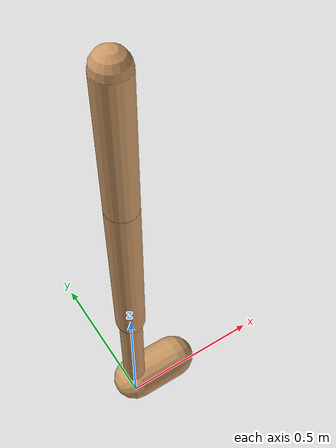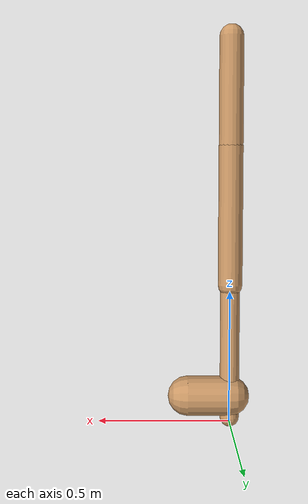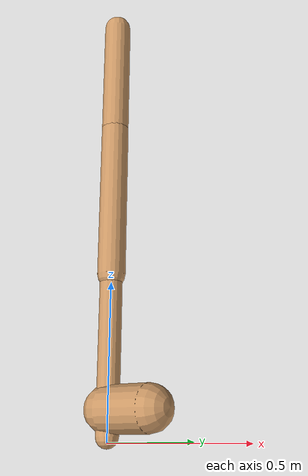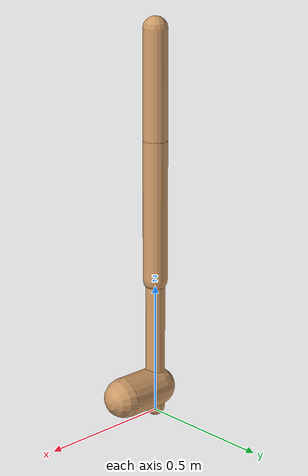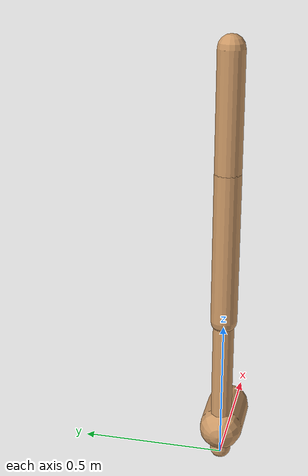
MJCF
<mujoco model="walker2d">
  <compiler angle="degree" coordinate="global" inertiafromgeom="true" />
  <default>
    <joint armature="0.01" damping=".1" limited="true" />
    <geom conaffinity="0" condim="3" contype="1" density="1000" friction="0.8 .1 .1" rgba="0.8 0.6 .4 1" />
  </default>
  <option integrator="RK4" timestep="0.002" />
  <worldbody>

    <body name="torso" pos="0 0 0.1547327047629603">
      <joint armature="0" axis="1 0 0" damping="0" limited="false" name="ignorex" pos="0 0 0" stiffness="0" type="slide" />
      <joint armature="0" axis="0 0 1" damping="0" limited="false" name="ignorez" pos="0 0 0" ref="1.25" stiffness="0" type="slide" />
      <joint armature="0" axis="0 1 0" damping="0" limited="false" name="ignorey" pos="0 0 0" stiffness="0" type="hinge" />
      <geom fromto="0 0 1.45 0 0 1.05" name="torso_geom" size="0.045513460672770456" type="capsule" />
      <body name="thigh">
        <joint axis="0 -1 0" name="thigh_joint" pos="0 0 1.05" range="-150 0" type="hinge" />
        <geom fromto="0.0 0.0 1.05 0.0 0.0 0.5267055609017556" name="thigh_geom" size="0.04582431062395149" type="capsule" />
        <body name="leg" pos="0.0 0.0 -0.0732944390982444">
          <joint axis="0 -1 0" name="leg_joint" pos="0 0 0.6" range="-150 0" type="hinge" />
          <geom fromto="0.0 0.0 0.6 0.0 0.0 0.01856173433528406" name="leg_geom" size="0.03665944849916119" type="capsule" />
          <body name="foot" pos="0.0 0.0 -0.08143826566471594">
            <joint axis="0 -1 0" name="foot_joint" pos="0 0 0.1" range="-45 45" type="hinge" />
            <geom fromto="0.0 0.0 0.10000000000000002 0.160010979666368 0.0 0.10000000000000002" name="foot_geom" size="0.07490044575718734" type="capsule" />
          </body>
        </body>
      </body>

      <body name="thigh_left">
        <joint axis="0 -1 0" name="thigh_left_joint" pos="0 0 1.05" range="-150 0" type="hinge" />
        <geom fromto="0.0 0.0 1.05 0.0 0.0 0.5267055609017556" name="thigh_left_geom" rgba=".7 .3 .6 1" size="0.04582431062395149" type="capsule" />
        <body name="leg_left" pos="0.0 0.0 -0.0732944390982444">
          <joint axis="0 -1 0" name="leg_left_joint" pos="0 0 0.6" range="-150 0" type="hinge" />
          <geom fromto="0.0 0.0 0.6 0.0 0.0 0.01856173433528406" name="leg_left_geom" rgba=".7 .3 .6 1" size="0.03665944849916119" type="capsule" />
          <body name="foot_left" pos="0.0 0.0 -0.08143826566471594">
            <joint axis="0 -1 0" name="foot_left_joint" pos="0 0 0.1" range="-45 45" type="hinge" />
            <geom fromto="0.0 0.0 0.10000000000000002 0.160010979666368 0.0 0.10000000000000002" name="foot_left_geom" rgba=".7 .3 .6 1" size="0.07490044575718734" type="capsule" />
          </body>
        </body>
      </body>
    </body>
  </worldbody>
  <actuator>

    <motor ctrllimited="true" ctrlrange="-1.0 1.0" gear="100" joint="thigh_joint" />
    <motor ctrllimited="true" ctrlrange="-1.0 1.0" gear="100" joint="leg_joint" />
    <motor ctrllimited="true" ctrlrange="-1.0 1.0" gear="100" joint="foot_joint" />
    <motor ctrllimited="true" ctrlrange="-1.0 1.0" gear="100" joint="thigh_left_joint" />
    <motor ctrllimited="true" ctrlrange="-1.0 1.0" gear="100" joint="leg_left_joint" />
    <motor ctrllimited="true" ctrlrange="-1.0 1.0" gear="100" joint="foot_left_joint" />

  </actuator>
</mujoco>
